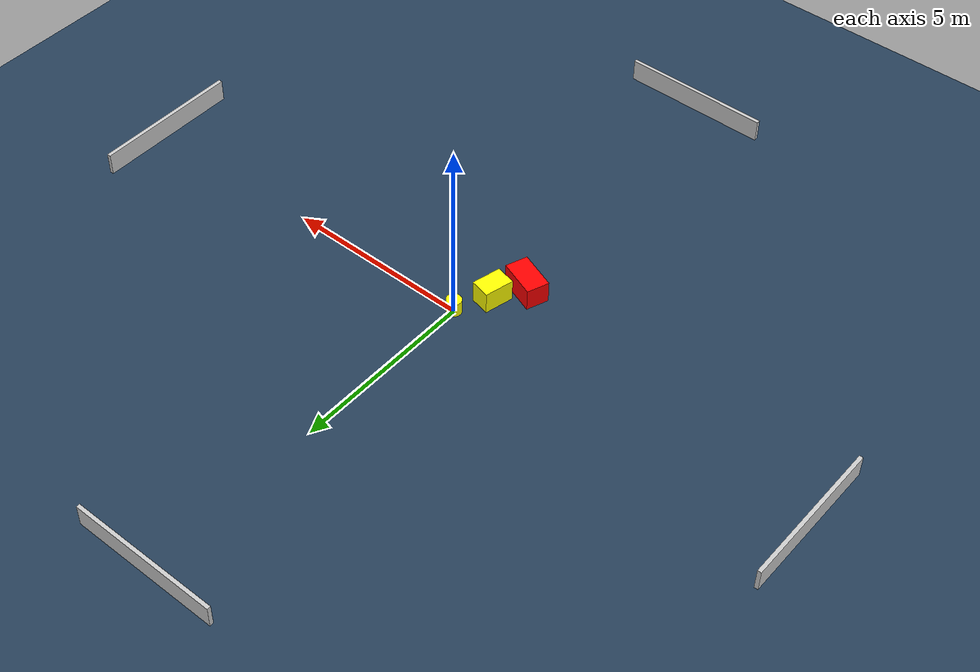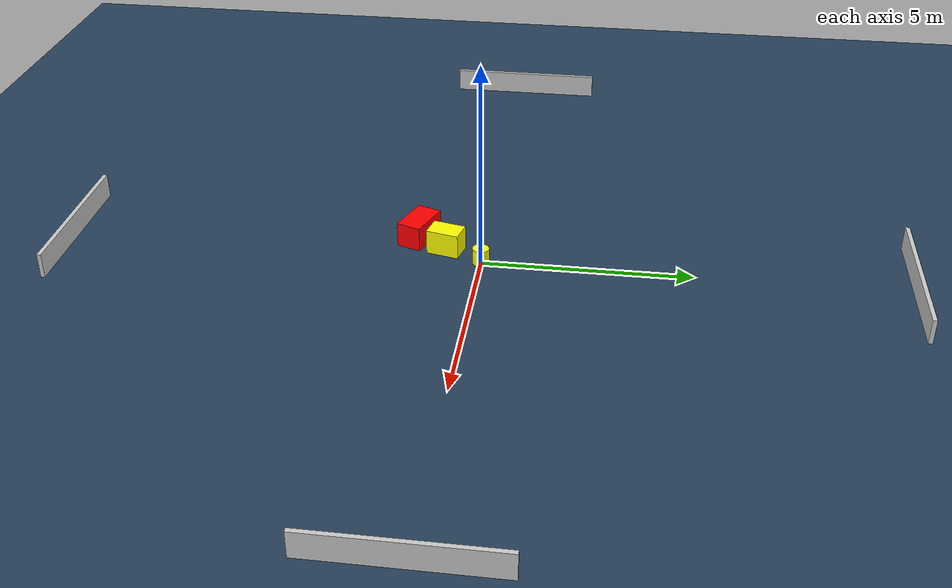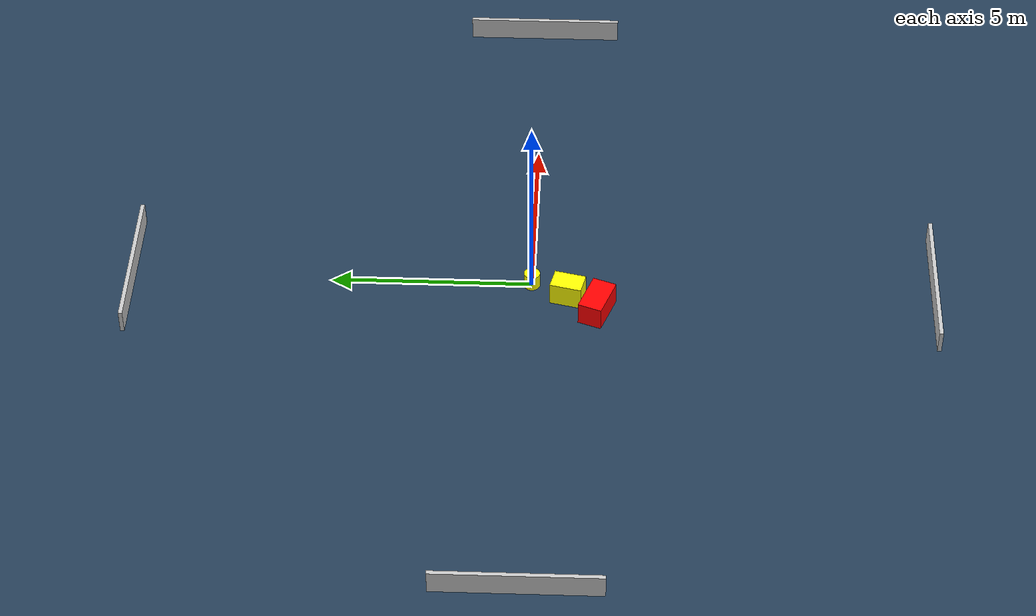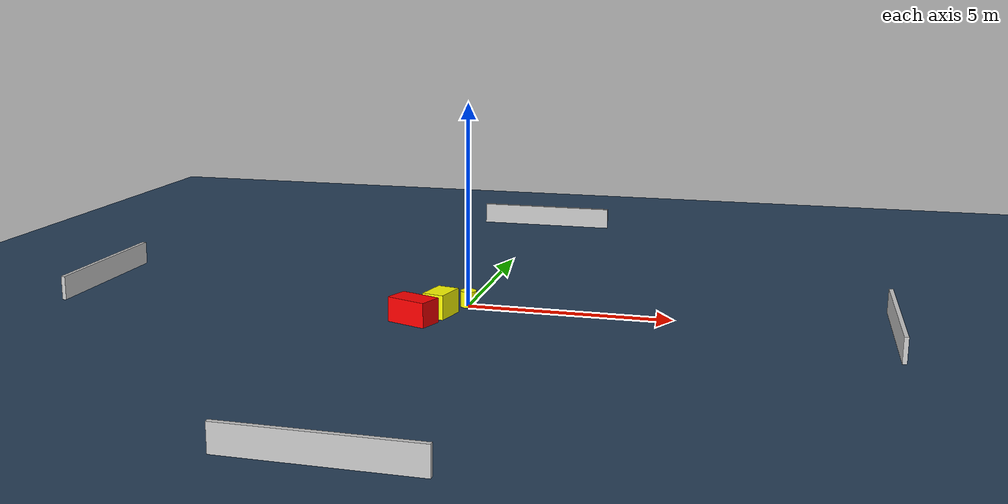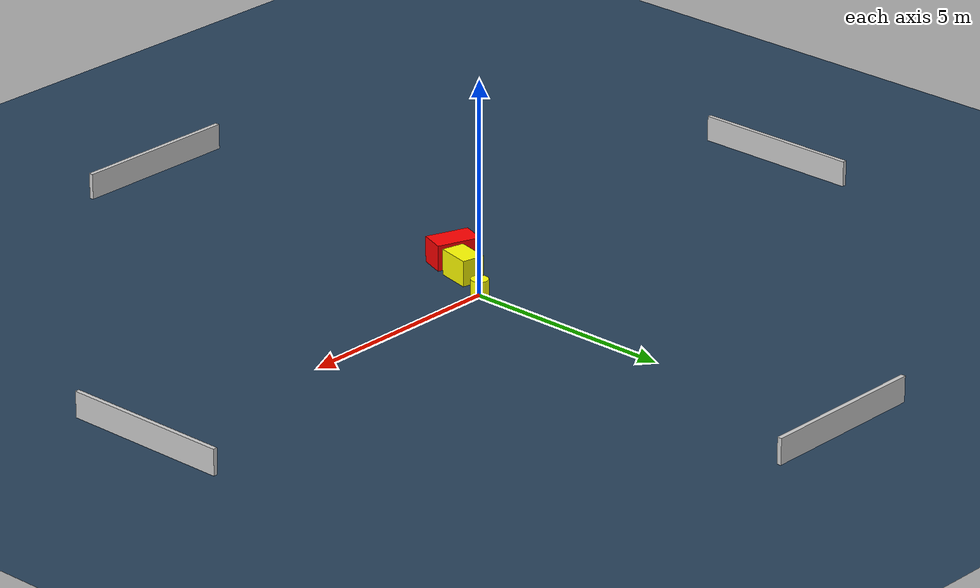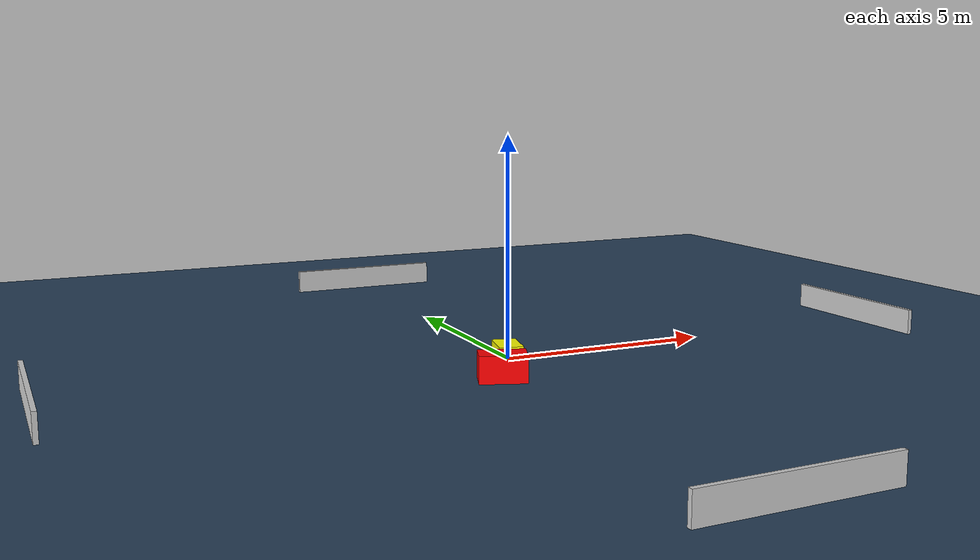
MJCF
<?xml version="1.0" ?>
<mujoco model="generated_environment">
  <option timestep="0.01" integrator="RK4" cone="elliptic"/>
  <default>
    <geom density="1"/>
  </default>
  <asset>
    <texture builtin="gradient" height="3072" name="skybox" rgb1="0.3 0.5 0.7" rgb2="0 0 0" type="skybox" width="512"/>
    <texture builtin="checker" height="300" name="groundplane" rgb1="0.2 0.3 0.4" rgb2="0.1 0.2 0.3" type="2d" width="300"/>
    <material name="groundplane" reflectance="0.2" texrepeat="5 5" texture="groundplane"/>
  </asset>
  <worldbody>
    <light dir="0 0 -1" directional="true" pos="0 0 1.5"/>
    <geom condim="3" friction="0.5 0.005 0.001" material="groundplane" name="floor" pos="0 0 0" size="0 0 0.05" type="plane"/>
    <body name="walls">
      <geom name="wall_1" condim="4" pos="-10.0 0.0 0.3" rgba="0.800000011920929 0.800000011920929 0.800000011920929 1.0" size="0.05 2.0 0.3" type="box"/>
      <geom name="wall_2" condim="4" pos="10.0 0.0 0.3" rgba="0.800000011920929 0.800000011920929 0.800000011920929 1.0" size="0.05 2.0 0.3" type="box"/>
      <geom name="wall_3" condim="4" pos="0.0 -10.0 0.3" rgba="0.800000011920929 0.800000011920929 0.800000011920929 1.0" size="2.0 0.05 0.3" type="box"/>
      <geom name="wall_4" condim="4" pos="0.0 10.0 0.3" rgba="0.800000011920929 0.800000011920929 0.800000011920929 1.0" size="2.0 0.05 0.3" type="box"/>
    </body>
    <body name="robot">
      <joint name="joint_x" type="slide" pos="0 0 0" axis="1 0 0"/>
      <joint name="joint_y" type="slide" pos="0 0 0" axis="0 1 0"/>
      <geom name="robot" type="cylinder" pos="0.0 0.0 0.2" size="0.2 0.2 0.0" mass="5.0" friction="1.0 0.005 0.0001" condim="4" rgba="1.0 1.0 0.0 1.0"/>
    </body>
    <body name="obstacle_1_movable">
      <geom name="obstacle_1_movable" condim="4" pos="-0.4534666829196026 -0.9020759900847577 0.3" euler="0 0 256.761762207498" friction="0.0 0.005 0.001" rgba="1.0 1.0 0.0 1.0" size="0.39684786717522724 0.2681456205685292 0.3" type="box" mass="0.1"/>
      <joint type="free"/>
    </body>
    <body name="obstacle_2_static">
      <geom name="obstacle_2_static" condim="4" pos="-0.9200643202718495 -1.6362007534894065 0.3" euler="0 0 159.5906724386792" friction="0.0 0.005 0.001" rgba="1.0 0.0 0.0 1.0" size="0.5158569793424789 0.30283242294215396 0.3" type="box"/>
    </body>
  </worldbody>
  <actuator>
    <motor name="actuator_x" joint="joint_x" gear="1" ctrlrange="-1 1"/>
    <motor name="actuator_y" joint="joint_y" gear="1" ctrlrange="-1 1"/>
  </actuator>
</mujoco>
